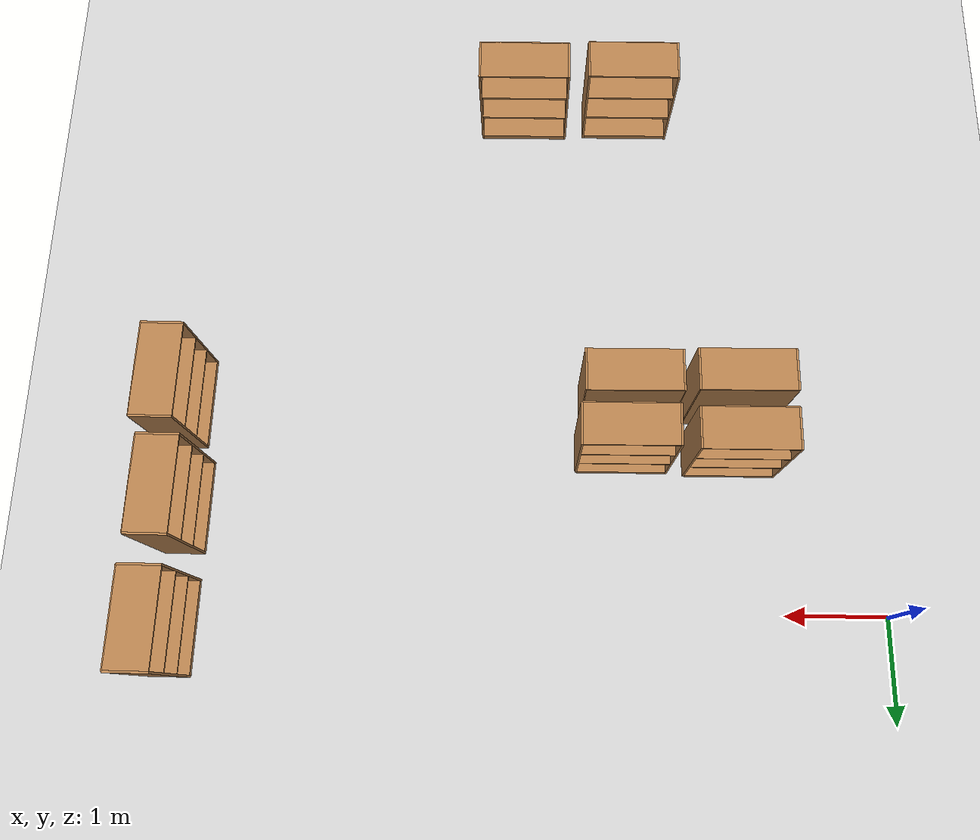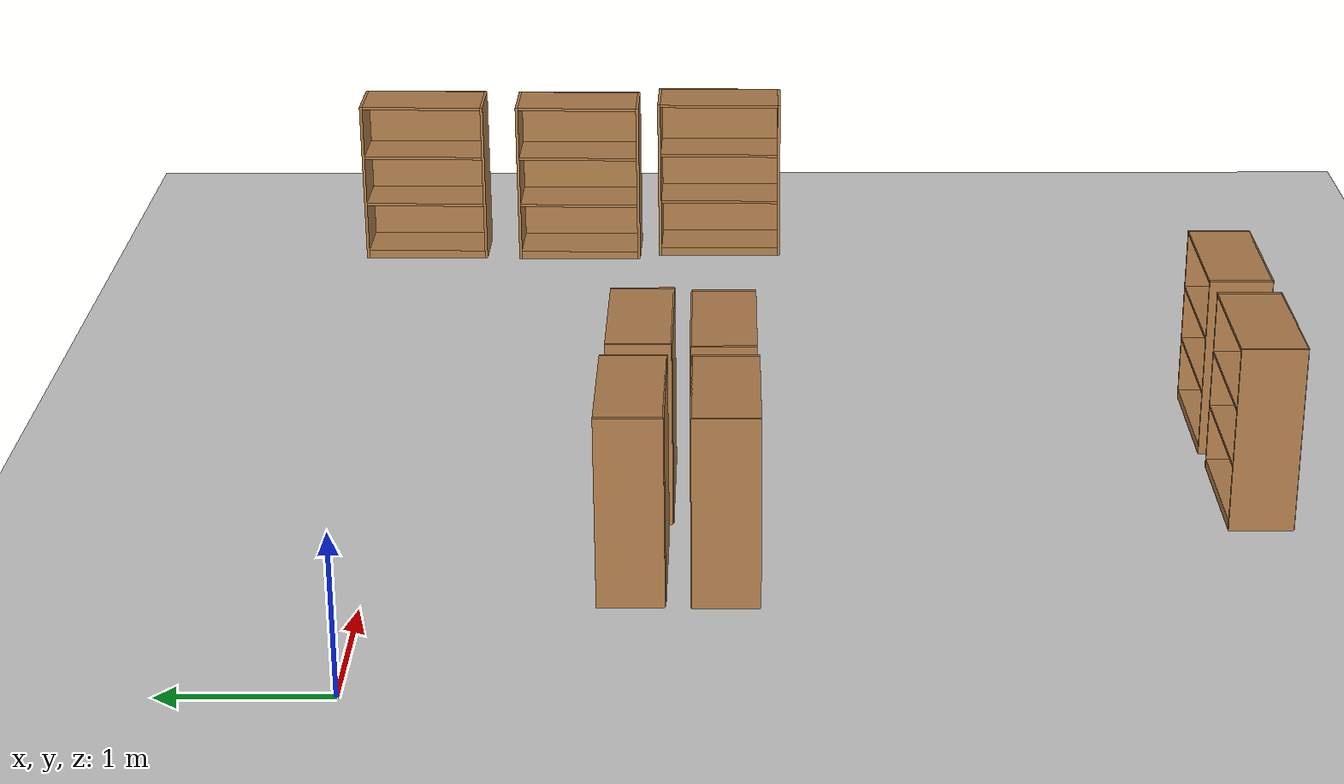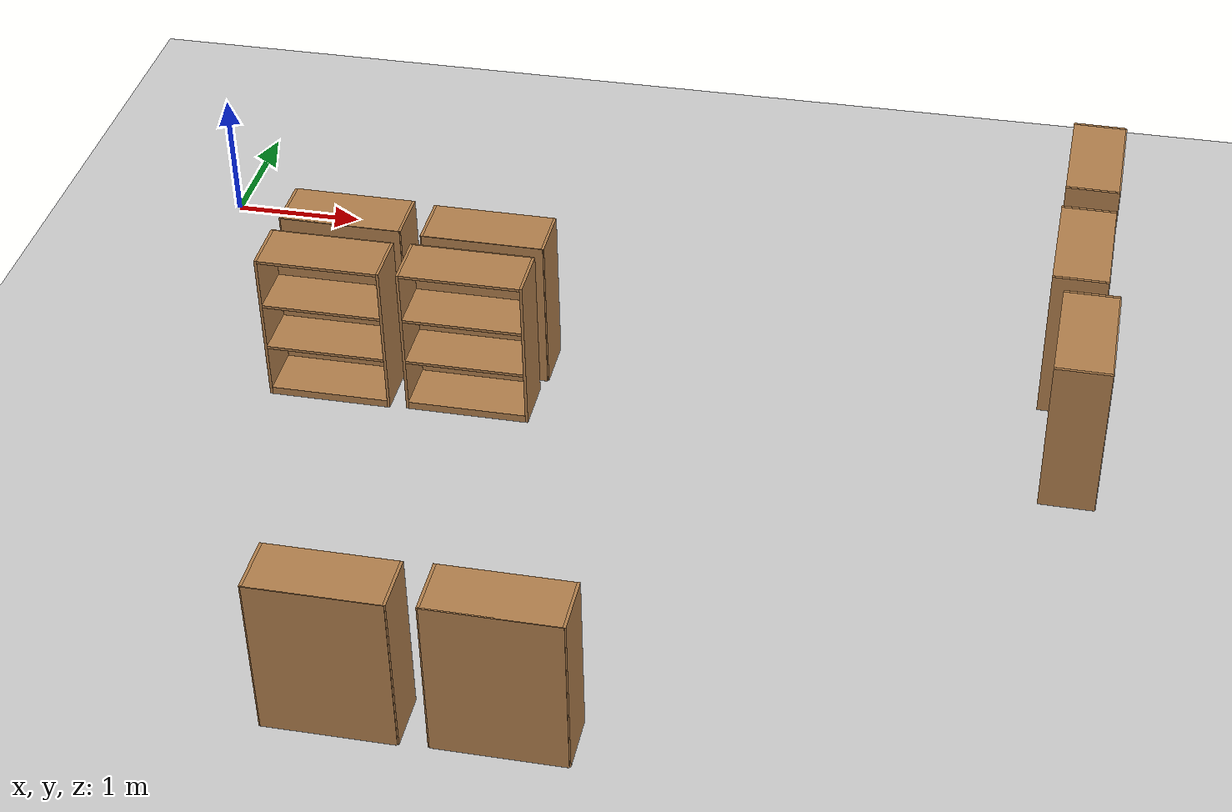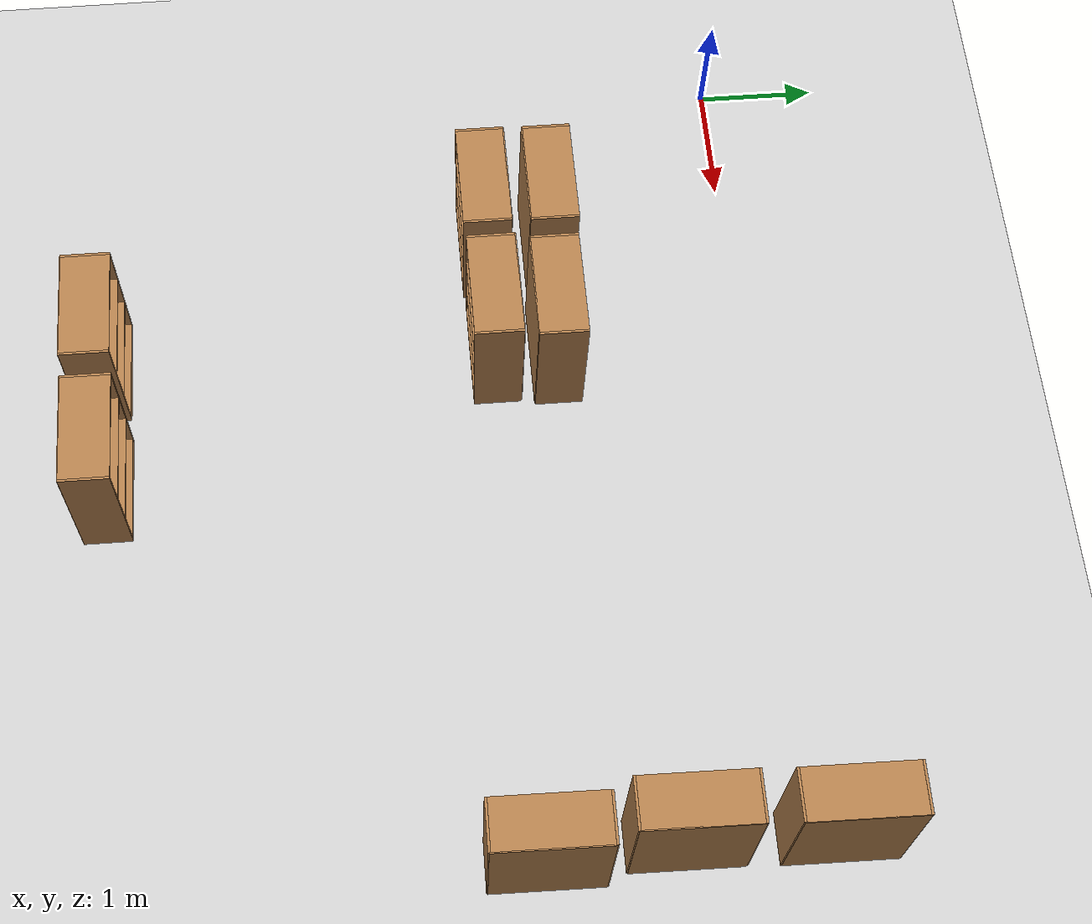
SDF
<sdf version="1.7">
 <world name="default">
  <model name="ground_plane">
   <static>1</static>
   <link name="link">
    <collision name="collision">
     <geometry><plane><normal>0 0 1</normal><size>100 100</size></plane></geometry>
     <surface><friction><ode><mu>100</mu><mu2>50</mu2></ode></friction></surface>
    </collision>
    <visual name="visual">
     <cast_shadows>0</cast_shadows>
     <geometry><plane><normal>0 0 1</normal><size>100 100</size></plane></geometry>
     <material>
      <script><uri>file://media/materials/scripts/gazebo.material</uri><name>Gazebo/Grey</name></script>
     </material>
    </visual>
   </link>
  </model>
  <model name="bookshelf">
   <static>1</static>
   <link name="link">
    <inertial><mass>1</mass></inertial>
    <collision name="back">
     <pose>0 0.005 0.6 0 -0 0</pose>
     <geometry><box><size>0.9 0.01 1.2</size></box></geometry>
    </collision>
    <visual name="visual1">
     <pose>0 0.005 0.6 0 -0 0</pose>
     <geometry><box><size>0.9 0.01 1.2</size></box></geometry>
     <material>
      <script><uri>file://media/materials/scripts/gazebo.material</uri><name>Gazebo/Wood</name></script>
     </material>
    </visual>
    <collision name="left_side">
     <pose>0.45 -0.195 0.6 0 -0 0</pose>
     <geometry><box><size>0.02 0.4 1.2</size></box></geometry>
    </collision>
    <visual name="visual2">
     <pose>0.45 -0.195 0.6 0 -0 0</pose>
     <geometry><box><size>0.02 0.4 1.2</size></box></geometry>
     <material>
      <script><uri>file://media/materials/scripts/gazebo.material</uri><name>Gazebo/Wood</name></script>
     </material>
    </visual>
    <collision name="right_side">
     <pose>-0.45 -0.195 0.6 0 -0 0</pose>
     <geometry><box><size>0.02 0.4 1.2</size></box></geometry>
    </collision>
    <visual name="visual3">
     <pose>-0.45 -0.195 0.6 0 -0 0</pose>
     <geometry><box><size>0.02 0.4 1.2</size></box></geometry>
     <material>
      <script><uri>file://media/materials/scripts/gazebo.material</uri><name>Gazebo/Wood</name></script>
     </material>
    </visual>
    <collision name="bottom">
     <pose>0 -0.195 0.03 0 -0 0</pose>
     <geometry><box><size>0.88 0.4 0.06</size></box></geometry>
    </collision>
    <visual name="visual4">
     <pose>0 -0.195 0.03 0 -0 0</pose>
     <geometry><box><size>0.88 0.4 0.06</size></box></geometry>
     <material>
      <script><uri>file://media/materials/scripts/gazebo.material</uri><name>Gazebo/Wood</name></script>
     </material>
    </visual>
    <collision name="top">
     <pose>0 -0.195 1.19 0 -0 0</pose>
     <geometry><box><size>0.88 0.4 0.02</size></box></geometry>
    </collision>
    <visual name="visual5">
     <pose>0 -0.195 1.19 0 -0 0</pose>
     <geometry><box><size>0.88 0.4 0.02</size></box></geometry>
     <material>
      <script><uri>file://media/materials/scripts/gazebo.material</uri><name>Gazebo/Wood</name></script>
     </material>
    </visual>
    <collision name="low_shelf">
     <pose>0 -0.195 0.43 0 -0 0</pose>
     <geometry><box><size>0.88 0.4 0.02</size></box></geometry>
    </collision>
    <visual name="visual6">
     <pose>0 -0.195 0.43 0 -0 0</pose>
     <geometry><box><size>0.88 0.4 0.02</size></box></geometry>
     <material>
      <script><uri>file://media/materials/scripts/gazebo.material</uri><name>Gazebo/Wood</name></script>
     </material>
    </visual>
    <collision name="high_shelf">
     <pose>0 -0.195 0.8 0 -0 0</pose>
     <geometry><box><size>0.88 0.4 0.02</size></box></geometry>
    </collision>
    <visual name="visual7">
     <pose>0 -0.195 0.8 0 -0 0</pose>
     <geometry><box><size>0.88 0.4 0.02</size></box></geometry>
     <material>
      <script><uri>file://media/materials/scripts/gazebo.material</uri><name>Gazebo/Wood</name></script>
     </material>
    </visual>
   </link>
   <pose>2.50859 -1.90908 0 0 -0 0</pose>
  </model>
  <model name="bookshelf_0">
   <static>1</static>
   <link name="link">
    <inertial><mass>1</mass></inertial>
    <collision name="back">
     <pose>0 0.005 0.6 0 -0 0</pose>
     <geometry><box><size>0.9 0.01 1.2</size></box></geometry>
    </collision>
    <visual name="visual1">
     <pose>0 0.005 0.6 0 -0 0</pose>
     <geometry><box><size>0.9 0.01 1.2</size></box></geometry>
     <material>
      <script><uri>file://media/materials/scripts/gazebo.material</uri><name>Gazebo/Wood</name></script>
     </material>
    </visual>
    <collision name="left_side">
     <pose>0.45 -0.195 0.6 0 -0 0</pose>
     <geometry><box><size>0.02 0.4 1.2</size></box></geometry>
    </collision>
    <visual name="visual2">
     <pose>0.45 -0.195 0.6 0 -0 0</pose>
     <geometry><box><size>0.02 0.4 1.2</size></box></geometry>
     <material>
      <script><uri>file://media/materials/scripts/gazebo.material</uri><name>Gazebo/Wood</name></script>
     </material>
    </visual>
    <collision name="right_side">
     <pose>-0.45 -0.195 0.6 0 -0 0</pose>
     <geometry><box><size>0.02 0.4 1.2</size></box></geometry>
    </collision>
    <visual name="visual3">
     <pose>-0.45 -0.195 0.6 0 -0 0</pose>
     <geometry><box><size>0.02 0.4 1.2</size></box></geometry>
     <material>
      <script><uri>file://media/materials/scripts/gazebo.material</uri><name>Gazebo/Wood</name></script>
     </material>
    </visual>
    <collision name="bottom">
     <pose>0 -0.195 0.03 0 -0 0</pose>
     <geometry><box><size>0.88 0.4 0.06</size></box></geometry>
    </collision>
    <visual name="visual4">
     <pose>0 -0.195 0.03 0 -0 0</pose>
     <geometry><box><size>0.88 0.4 0.06</size></box></geometry>
     <material>
      <script><uri>file://media/materials/scripts/gazebo.material</uri><name>Gazebo/Wood</name></script>
     </material>
    </visual>
    <collision name="top">
     <pose>0 -0.195 1.19 0 -0 0</pose>
     <geometry><box><size>0.88 0.4 0.02</size></box></geometry>
    </collision>
    <visual name="visual5">
     <pose>0 -0.195 1.19 0 -0 0</pose>
     <geometry><box><size>0.88 0.4 0.02</size></box></geometry>
     <material>
      <script><uri>file://media/materials/scripts/gazebo.material</uri><name>Gazebo/Wood</name></script>
     </material>
    </visual>
    <collision name="low_shelf">
     <pose>0 -0.195 0.43 0 -0 0</pose>
     <geometry><box><size>0.88 0.4 0.02</size></box></geometry>
    </collision>
    <visual name="visual6">
     <pose>0 -0.195 0.43 0 -0 0</pose>
     <geometry><box><size>0.88 0.4 0.02</size></box></geometry>
     <material>
      <script><uri>file://media/materials/scripts/gazebo.material</uri><name>Gazebo/Wood</name></script>
     </material>
    </visual>
    <collision name="high_shelf">
     <pose>0 -0.195 0.8 0 -0 0</pose>
     <geometry><box><size>0.88 0.4 0.02</size></box></geometry>
    </collision>
    <visual name="visual7">
     <pose>0 -0.195 0.8 0 -0 0</pose>
     <geometry><box><size>0.88 0.4 0.02</size></box></geometry>
     <material>
      <script><uri>file://media/materials/scripts/gazebo.material</uri><name>Gazebo/Wood</name></script>
     </material>
    </visual>
   </link>
   <pose>1.46715 -1.9224 0 0 -0 0</pose>
  </model>
  <model name="bookshelf_4">
   <static>1</static>
   <link name="link">
    <inertial><mass>1</mass></inertial>
    <collision name="back">
     <pose>0 0.005 0.6 0 -0 0</pose>
     <geometry><box><size>0.9 0.01 1.2</size></box></geometry>
    </collision>
    <visual name="visual1">
     <pose>0 0.005 0.6 0 -0 0</pose>
     <geometry><box><size>0.9 0.01 1.2</size></box></geometry>
     <material>
      <script><uri>file://media/materials/scripts/gazebo.material</uri><name>Gazebo/Wood</name></script>
     </material>
    </visual>
    <collision name="left_side">
     <pose>0.45 -0.195 0.6 0 -0 0</pose>
     <geometry><box><size>0.02 0.4 1.2</size></box></geometry>
    </collision>
    <visual name="visual2">
     <pose>0.45 -0.195 0.6 0 -0 0</pose>
     <geometry><box><size>0.02 0.4 1.2</size></box></geometry>
     <material>
      <script><uri>file://media/materials/scripts/gazebo.material</uri><name>Gazebo/Wood</name></script>
     </material>
    </visual>
    <collision name="right_side">
     <pose>-0.45 -0.195 0.6 0 -0 0</pose>
     <geometry><box><size>0.02 0.4 1.2</size></box></geometry>
    </collision>
    <visual name="visual3">
     <pose>-0.45 -0.195 0.6 0 -0 0</pose>
     <geometry><box><size>0.02 0.4 1.2</size></box></geometry>
     <material>
      <script><uri>file://media/materials/scripts/gazebo.material</uri><name>Gazebo/Wood</name></script>
     </material>
    </visual>
    <collision name="bottom">
     <pose>0 -0.195 0.03 0 -0 0</pose>
     <geometry><box><size>0.88 0.4 0.06</size></box></geometry>
    </collision>
    <visual name="visual4">
     <pose>0 -0.195 0.03 0 -0 0</pose>
     <geometry><box><size>0.88 0.4 0.06</size></box></geometry>
     <material>
      <script><uri>file://media/materials/scripts/gazebo.material</uri><name>Gazebo/Wood</name></script>
     </material>
    </visual>
    <collision name="top">
     <pose>0 -0.195 1.19 0 -0 0</pose>
     <geometry><box><size>0.88 0.4 0.02</size></box></geometry>
    </collision>
    <visual name="visual5">
     <pose>0 -0.195 1.19 0 -0 0</pose>
     <geometry><box><size>0.88 0.4 0.02</size></box></geometry>
     <material>
      <script><uri>file://media/materials/scripts/gazebo.material</uri><name>Gazebo/Wood</name></script>
     </material>
    </visual>
    <collision name="low_shelf">
     <pose>0 -0.195 0.43 0 -0 0</pose>
     <geometry><box><size>0.88 0.4 0.02</size></box></geometry>
    </collision>
    <visual name="visual6">
     <pose>0 -0.195 0.43 0 -0 0</pose>
     <geometry><box><size>0.88 0.4 0.02</size></box></geometry>
     <material>
      <script><uri>file://media/materials/scripts/gazebo.material</uri><name>Gazebo/Wood</name></script>
     </material>
    </visual>
    <collision name="high_shelf">
     <pose>0 -0.195 0.8 0 -0 0</pose>
     <geometry><box><size>0.88 0.4 0.02</size></box></geometry>
    </collision>
    <visual name="visual7">
     <pose>0 -0.195 0.8 0 -0 0</pose>
     <geometry><box><size>0.88 0.4 0.02</size></box></geometry>
     <material>
      <script><uri>file://media/materials/scripts/gazebo.material</uri><name>Gazebo/Wood</name></script>
     </material>
    </visual>
   </link>
   <pose>7.09428 -2.06897 0 0 -0 -1.58422</pose>
  </model>
  <model name="bookshelf_4_clone">
   <static>1</static>
   <link name="link">
    <inertial><mass>1</mass></inertial>
    <collision name="back">
     <pose>0 0.005 0.6 0 -0 0</pose>
     <geometry><box><size>0.9 0.01 1.2</size></box></geometry>
    </collision>
    <visual name="visual1">
     <pose>0 0.005 0.6 0 -0 0</pose>
     <geometry><box><size>0.9 0.01 1.2</size></box></geometry>
     <material>
      <script><uri>file://media/materials/scripts/gazebo.material</uri><name>Gazebo/Wood</name></script>
     </material>
    </visual>
    <collision name="left_side">
     <pose>0.45 -0.195 0.6 0 -0 0</pose>
     <geometry><box><size>0.02 0.4 1.2</size></box></geometry>
    </collision>
    <visual name="visual2">
     <pose>0.45 -0.195 0.6 0 -0 0</pose>
     <geometry><box><size>0.02 0.4 1.2</size></box></geometry>
     <material>
      <script><uri>file://media/materials/scripts/gazebo.material</uri><name>Gazebo/Wood</name></script>
     </material>
    </visual>
    <collision name="right_side">
     <pose>-0.45 -0.195 0.6 0 -0 0</pose>
     <geometry><box><size>0.02 0.4 1.2</size></box></geometry>
    </collision>
    <visual name="visual3">
     <pose>-0.45 -0.195 0.6 0 -0 0</pose>
     <geometry><box><size>0.02 0.4 1.2</size></box></geometry>
     <material>
      <script><uri>file://media/materials/scripts/gazebo.material</uri><name>Gazebo/Wood</name></script>
     </material>
    </visual>
    <collision name="bottom">
     <pose>0 -0.195 0.03 0 -0 0</pose>
     <geometry><box><size>0.88 0.4 0.06</size></box></geometry>
    </collision>
    <visual name="visual4">
     <pose>0 -0.195 0.03 0 -0 0</pose>
     <geometry><box><size>0.88 0.4 0.06</size></box></geometry>
     <material>
      <script><uri>file://media/materials/scripts/gazebo.material</uri><name>Gazebo/Wood</name></script>
     </material>
    </visual>
    <collision name="top">
     <pose>0 -0.195 1.19 0 -0 0</pose>
     <geometry><box><size>0.88 0.4 0.02</size></box></geometry>
    </collision>
    <visual name="visual5">
     <pose>0 -0.195 1.19 0 -0 0</pose>
     <geometry><box><size>0.88 0.4 0.02</size></box></geometry>
     <material>
      <script><uri>file://media/materials/scripts/gazebo.material</uri><name>Gazebo/Wood</name></script>
     </material>
    </visual>
    <collision name="low_shelf">
     <pose>0 -0.195 0.43 0 -0 0</pose>
     <geometry><box><size>0.88 0.4 0.02</size></box></geometry>
    </collision>
    <visual name="visual6">
     <pose>0 -0.195 0.43 0 -0 0</pose>
     <geometry><box><size>0.88 0.4 0.02</size></box></geometry>
     <material>
      <script><uri>file://media/materials/scripts/gazebo.material</uri><name>Gazebo/Wood</name></script>
     </material>
    </visual>
    <collision name="high_shelf">
     <pose>0 -0.195 0.8 0 -0 0</pose>
     <geometry><box><size>0.88 0.4 0.02</size></box></geometry>
    </collision>
    <visual name="visual7">
     <pose>0 -0.195 0.8 0 -0 0</pose>
     <geometry><box><size>0.88 0.4 0.02</size></box></geometry>
     <material>
      <script><uri>file://media/materials/scripts/gazebo.material</uri><name>Gazebo/Wood</name></script>
     </material>
    </visual>
   </link>
   <pose>2.54924 -1.78639 0 0 -0 3.13902</pose>
  </model>
  <model name="bookshelf_4_clone_0">
   <static>1</static>
   <link name="link">
    <inertial><mass>1</mass></inertial>
    <collision name="back">
     <pose>0 0.005 0.6 0 -0 0</pose>
     <geometry><box><size>0.9 0.01 1.2</size></box></geometry>
    </collision>
    <visual name="visual1">
     <pose>0 0.005 0.6 0 -0 0</pose>
     <geometry><box><size>0.9 0.01 1.2</size></box></geometry>
     <material>
      <script><uri>file://media/materials/scripts/gazebo.material</uri><name>Gazebo/Wood</name></script>
     </material>
    </visual>
    <collision name="left_side">
     <pose>0.45 -0.195 0.6 0 -0 0</pose>
     <geometry><box><size>0.02 0.4 1.2</size></box></geometry>
    </collision>
    <visual name="visual2">
     <pose>0.45 -0.195 0.6 0 -0 0</pose>
     <geometry><box><size>0.02 0.4 1.2</size></box></geometry>
     <material>
      <script><uri>file://media/materials/scripts/gazebo.material</uri><name>Gazebo/Wood</name></script>
     </material>
    </visual>
    <collision name="right_side">
     <pose>-0.45 -0.195 0.6 0 -0 0</pose>
     <geometry><box><size>0.02 0.4 1.2</size></box></geometry>
    </collision>
    <visual name="visual3">
     <pose>-0.45 -0.195 0.6 0 -0 0</pose>
     <geometry><box><size>0.02 0.4 1.2</size></box></geometry>
     <material>
      <script><uri>file://media/materials/scripts/gazebo.material</uri><name>Gazebo/Wood</name></script>
     </material>
    </visual>
    <collision name="bottom">
     <pose>0 -0.195 0.03 0 -0 0</pose>
     <geometry><box><size>0.88 0.4 0.06</size></box></geometry>
    </collision>
    <visual name="visual4">
     <pose>0 -0.195 0.03 0 -0 0</pose>
     <geometry><box><size>0.88 0.4 0.06</size></box></geometry>
     <material>
      <script><uri>file://media/materials/scripts/gazebo.material</uri><name>Gazebo/Wood</name></script>
     </material>
    </visual>
    <collision name="top">
     <pose>0 -0.195 1.19 0 -0 0</pose>
     <geometry><box><size>0.88 0.4 0.02</size></box></geometry>
    </collision>
    <visual name="visual5">
     <pose>0 -0.195 1.19 0 -0 0</pose>
     <geometry><box><size>0.88 0.4 0.02</size></box></geometry>
     <material>
      <script><uri>file://media/materials/scripts/gazebo.material</uri><name>Gazebo/Wood</name></script>
     </material>
    </visual>
    <collision name="low_shelf">
     <pose>0 -0.195 0.43 0 -0 0</pose>
     <geometry><box><size>0.88 0.4 0.02</size></box></geometry>
    </collision>
    <visual name="visual6">
     <pose>0 -0.195 0.43 0 -0 0</pose>
     <geometry><box><size>0.88 0.4 0.02</size></box></geometry>
     <material>
      <script><uri>file://media/materials/scripts/gazebo.material</uri><name>Gazebo/Wood</name></script>
     </material>
    </visual>
    <collision name="high_shelf">
     <pose>0 -0.195 0.8 0 -0 0</pose>
     <geometry><box><size>0.88 0.4 0.02</size></box></geometry>
    </collision>
    <visual name="visual7">
     <pose>0 -0.195 0.8 0 -0 0</pose>
     <geometry><box><size>0.88 0.4 0.02</size></box></geometry>
     <material>
      <script><uri>file://media/materials/scripts/gazebo.material</uri><name>Gazebo/Wood</name></script>
     </material>
    </visual>
   </link>
   <pose>1.47705 -1.75897 0 0 -0 3.13902</pose>
  </model>
  <model name="bookshelf_4_clone_1">
   <static>1</static>
   <link name="link">
    <inertial><mass>1</mass></inertial>
    <collision name="back">
     <pose>0 0.005 0.6 0 -0 0</pose>
     <geometry><box><size>0.9 0.01 1.2</size></box></geometry>
    </collision>
    <visual name="visual1">
     <pose>0 0.005 0.6 0 -0 0</pose>
     <geometry><box><size>0.9 0.01 1.2</size></box></geometry>
     <material>
      <script><uri>file://media/materials/scripts/gazebo.material</uri><name>Gazebo/Wood</name></script>
     </material>
    </visual>
    <collision name="left_side">
     <pose>0.45 -0.195 0.6 0 -0 0</pose>
     <geometry><box><size>0.02 0.4 1.2</size></box></geometry>
    </collision>
    <visual name="visual2">
     <pose>0.45 -0.195 0.6 0 -0 0</pose>
     <geometry><box><size>0.02 0.4 1.2</size></box></geometry>
     <material>
      <script><uri>file://media/materials/scripts/gazebo.material</uri><name>Gazebo/Wood</name></script>
     </material>
    </visual>
    <collision name="right_side">
     <pose>-0.45 -0.195 0.6 0 -0 0</pose>
     <geometry><box><size>0.02 0.4 1.2</size></box></geometry>
    </collision>
    <visual name="visual3">
     <pose>-0.45 -0.195 0.6 0 -0 0</pose>
     <geometry><box><size>0.02 0.4 1.2</size></box></geometry>
     <material>
      <script><uri>file://media/materials/scripts/gazebo.material</uri><name>Gazebo/Wood</name></script>
     </material>
    </visual>
    <collision name="bottom">
     <pose>0 -0.195 0.03 0 -0 0</pose>
     <geometry><box><size>0.88 0.4 0.06</size></box></geometry>
    </collision>
    <visual name="visual4">
     <pose>0 -0.195 0.03 0 -0 0</pose>
     <geometry><box><size>0.88 0.4 0.06</size></box></geometry>
     <material>
      <script><uri>file://media/materials/scripts/gazebo.material</uri><name>Gazebo/Wood</name></script>
     </material>
    </visual>
    <collision name="top">
     <pose>0 -0.195 1.19 0 -0 0</pose>
     <geometry><box><size>0.88 0.4 0.02</size></box></geometry>
    </collision>
    <visual name="visual5">
     <pose>0 -0.195 1.19 0 -0 0</pose>
     <geometry><box><size>0.88 0.4 0.02</size></box></geometry>
     <material>
      <script><uri>file://media/materials/scripts/gazebo.material</uri><name>Gazebo/Wood</name></script>
     </material>
    </visual>
    <collision name="low_shelf">
     <pose>0 -0.195 0.43 0 -0 0</pose>
     <geometry><box><size>0.88 0.4 0.02</size></box></geometry>
    </collision>
    <visual name="visual6">
     <pose>0 -0.195 0.43 0 -0 0</pose>
     <geometry><box><size>0.88 0.4 0.02</size></box></geometry>
     <material>
      <script><uri>file://media/materials/scripts/gazebo.material</uri><name>Gazebo/Wood</name></script>
     </material>
    </visual>
    <collision name="high_shelf">
     <pose>0 -0.195 0.8 0 -0 0</pose>
     <geometry><box><size>0.88 0.4 0.02</size></box></geometry>
    </collision>
    <visual name="visual7">
     <pose>0 -0.195 0.8 0 -0 0</pose>
     <geometry><box><size>0.88 0.4 0.02</size></box></geometry>
     <material>
      <script><uri>file://media/materials/scripts/gazebo.material</uri><name>Gazebo/Wood</name></script>
     </material>
    </visual>
   </link>
   <pose>3.55253 -5.5625 0 0 -0 3.13902</pose>
  </model>
  <model name="bookshelf_4_clone_2">
   <static>1</static>
   <link name="link">
    <inertial><mass>1</mass></inertial>
    <collision name="back">
     <pose>0 0.005 0.6 0 -0 0</pose>
     <geometry><box><size>0.9 0.01 1.2</size></box></geometry>
    </collision>
    <visual name="visual1">
     <pose>0 0.005 0.6 0 -0 0</pose>
     <geometry><box><size>0.9 0.01 1.2</size></box></geometry>
     <material>
      <script><uri>file://media/materials/scripts/gazebo.material</uri><name>Gazebo/Wood</name></script>
     </material>
    </visual>
    <collision name="left_side">
     <pose>0.45 -0.195 0.6 0 -0 0</pose>
     <geometry><box><size>0.02 0.4 1.2</size></box></geometry>
    </collision>
    <visual name="visual2">
     <pose>0.45 -0.195 0.6 0 -0 0</pose>
     <geometry><box><size>0.02 0.4 1.2</size></box></geometry>
     <material>
      <script><uri>file://media/materials/scripts/gazebo.material</uri><name>Gazebo/Wood</name></script>
     </material>
    </visual>
    <collision name="right_side">
     <pose>-0.45 -0.195 0.6 0 -0 0</pose>
     <geometry><box><size>0.02 0.4 1.2</size></box></geometry>
    </collision>
    <visual name="visual3">
     <pose>-0.45 -0.195 0.6 0 -0 0</pose>
     <geometry><box><size>0.02 0.4 1.2</size></box></geometry>
     <material>
      <script><uri>file://media/materials/scripts/gazebo.material</uri><name>Gazebo/Wood</name></script>
     </material>
    </visual>
    <collision name="bottom">
     <pose>0 -0.195 0.03 0 -0 0</pose>
     <geometry><box><size>0.88 0.4 0.06</size></box></geometry>
    </collision>
    <visual name="visual4">
     <pose>0 -0.195 0.03 0 -0 0</pose>
     <geometry><box><size>0.88 0.4 0.06</size></box></geometry>
     <material>
      <script><uri>file://media/materials/scripts/gazebo.material</uri><name>Gazebo/Wood</name></script>
     </material>
    </visual>
    <collision name="top">
     <pose>0 -0.195 1.19 0 -0 0</pose>
     <geometry><box><size>0.88 0.4 0.02</size></box></geometry>
    </collision>
    <visual name="visual5">
     <pose>0 -0.195 1.19 0 -0 0</pose>
     <geometry><box><size>0.88 0.4 0.02</size></box></geometry>
     <material>
      <script><uri>file://media/materials/scripts/gazebo.material</uri><name>Gazebo/Wood</name></script>
     </material>
    </visual>
    <collision name="low_shelf">
     <pose>0 -0.195 0.43 0 -0 0</pose>
     <geometry><box><size>0.88 0.4 0.02</size></box></geometry>
    </collision>
    <visual name="visual6">
     <pose>0 -0.195 0.43 0 -0 0</pose>
     <geometry><box><size>0.88 0.4 0.02</size></box></geometry>
     <material>
      <script><uri>file://media/materials/scripts/gazebo.material</uri><name>Gazebo/Wood</name></script>
     </material>
    </visual>
    <collision name="high_shelf">
     <pose>0 -0.195 0.8 0 -0 0</pose>
     <geometry><box><size>0.88 0.4 0.02</size></box></geometry>
    </collision>
    <visual name="visual7">
     <pose>0 -0.195 0.8 0 -0 0</pose>
     <geometry><box><size>0.88 0.4 0.02</size></box></geometry>
     <material>
      <script><uri>file://media/materials/scripts/gazebo.material</uri><name>Gazebo/Wood</name></script>
     </material>
    </visual>
   </link>
   <pose>2.44957 -5.57602 0 0 -0 3.13902</pose>
  </model>
  <model name="bookshelf_4_clone_9">
   <static>1</static>
   <link name="link">
    <inertial><mass>1</mass></inertial>
    <collision name="back">
     <pose>0 0.005 0.6 0 -0 0</pose>
     <geometry><box><size>0.9 0.01 1.2</size></box></geometry>
    </collision>
    <visual name="visual1">
     <pose>0 0.005 0.6 0 -0 0</pose>
     <geometry><box><size>0.9 0.01 1.2</size></box></geometry>
     <material>
      <script><uri>file://media/materials/scripts/gazebo.material</uri><name>Gazebo/Wood</name></script>
     </material>
    </visual>
    <collision name="left_side">
     <pose>0.45 -0.195 0.6 0 -0 0</pose>
     <geometry><box><size>0.02 0.4 1.2</size></box></geometry>
    </collision>
    <visual name="visual2">
     <pose>0.45 -0.195 0.6 0 -0 0</pose>
     <geometry><box><size>0.02 0.4 1.2</size></box></geometry>
     <material>
      <script><uri>file://media/materials/scripts/gazebo.material</uri><name>Gazebo/Wood</name></script>
     </material>
    </visual>
    <collision name="right_side">
     <pose>-0.45 -0.195 0.6 0 -0 0</pose>
     <geometry><box><size>0.02 0.4 1.2</size></box></geometry>
    </collision>
    <visual name="visual3">
     <pose>-0.45 -0.195 0.6 0 -0 0</pose>
     <geometry><box><size>0.02 0.4 1.2</size></box></geometry>
     <material>
      <script><uri>file://media/materials/scripts/gazebo.material</uri><name>Gazebo/Wood</name></script>
     </material>
    </visual>
    <collision name="bottom">
     <pose>0 -0.195 0.03 0 -0 0</pose>
     <geometry><box><size>0.88 0.4 0.06</size></box></geometry>
    </collision>
    <visual name="visual4">
     <pose>0 -0.195 0.03 0 -0 0</pose>
     <geometry><box><size>0.88 0.4 0.06</size></box></geometry>
     <material>
      <script><uri>file://media/materials/scripts/gazebo.material</uri><name>Gazebo/Wood</name></script>
     </material>
    </visual>
    <collision name="top">
     <pose>0 -0.195 1.19 0 -0 0</pose>
     <geometry><box><size>0.88 0.4 0.02</size></box></geometry>
    </collision>
    <visual name="visual5">
     <pose>0 -0.195 1.19 0 -0 0</pose>
     <geometry><box><size>0.88 0.4 0.02</size></box></geometry>
     <material>
      <script><uri>file://media/materials/scripts/gazebo.material</uri><name>Gazebo/Wood</name></script>
     </material>
    </visual>
    <collision name="low_shelf">
     <pose>0 -0.195 0.43 0 -0 0</pose>
     <geometry><box><size>0.88 0.4 0.02</size></box></geometry>
    </collision>
    <visual name="visual6">
     <pose>0 -0.195 0.43 0 -0 0</pose>
     <geometry><box><size>0.88 0.4 0.02</size></box></geometry>
     <material>
      <script><uri>file://media/materials/scripts/gazebo.material</uri><name>Gazebo/Wood</name></script>
     </material>
    </visual>
    <collision name="high_shelf">
     <pose>0 -0.195 0.8 0 -0 0</pose>
     <geometry><box><size>0.88 0.4 0.02</size></box></geometry>
    </collision>
    <visual name="visual7">
     <pose>0 -0.195 0.8 0 -0 0</pose>
     <geometry><box><size>0.88 0.4 0.02</size></box></geometry>
     <material>
      <script><uri>file://media/materials/scripts/gazebo.material</uri><name>Gazebo/Wood</name></script>
     </material>
    </visual>
   </link>
   <pose>7.01897 -1.00718 0 0 0 -1.58422</pose>
  </model>
  <model name="bookshelf_4_clone_10">
   <static>1</static>
   <link name="link">
    <inertial><mass>1</mass></inertial>
    <collision name="back">
     <pose>0 0.005 0.6 0 -0 0</pose>
     <geometry><box><size>0.9 0.01 1.2</size></box></geometry>
    </collision>
    <visual name="visual1">
     <pose>0 0.005 0.6 0 -0 0</pose>
     <geometry><box><size>0.9 0.01 1.2</size></box></geometry>
     <material>
      <script><uri>file://media/materials/scripts/gazebo.material</uri><name>Gazebo/Wood</name></script>
     </material>
    </visual>
    <collision name="left_side">
     <pose>0.45 -0.195 0.6 0 -0 0</pose>
     <geometry><box><size>0.02 0.4 1.2</size></box></geometry>
    </collision>
    <visual name="visual2">
     <pose>0.45 -0.195 0.6 0 -0 0</pose>
     <geometry><box><size>0.02 0.4 1.2</size></box></geometry>
     <material>
      <script><uri>file://media/materials/scripts/gazebo.material</uri><name>Gazebo/Wood</name></script>
     </material>
    </visual>
    <collision name="right_side">
     <pose>-0.45 -0.195 0.6 0 -0 0</pose>
     <geometry><box><size>0.02 0.4 1.2</size></box></geometry>
    </collision>
    <visual name="visual3">
     <pose>-0.45 -0.195 0.6 0 -0 0</pose>
     <geometry><box><size>0.02 0.4 1.2</size></box></geometry>
     <material>
      <script><uri>file://media/materials/scripts/gazebo.material</uri><name>Gazebo/Wood</name></script>
     </material>
    </visual>
    <collision name="bottom">
     <pose>0 -0.195 0.03 0 -0 0</pose>
     <geometry><box><size>0.88 0.4 0.06</size></box></geometry>
    </collision>
    <visual name="visual4">
     <pose>0 -0.195 0.03 0 -0 0</pose>
     <geometry><box><size>0.88 0.4 0.06</size></box></geometry>
     <material>
      <script><uri>file://media/materials/scripts/gazebo.material</uri><name>Gazebo/Wood</name></script>
     </material>
    </visual>
    <collision name="top">
     <pose>0 -0.195 1.19 0 -0 0</pose>
     <geometry><box><size>0.88 0.4 0.02</size></box></geometry>
    </collision>
    <visual name="visual5">
     <pose>0 -0.195 1.19 0 -0 0</pose>
     <geometry><box><size>0.88 0.4 0.02</size></box></geometry>
     <material>
      <script><uri>file://media/materials/scripts/gazebo.material</uri><name>Gazebo/Wood</name></script>
     </material>
    </visual>
    <collision name="low_shelf">
     <pose>0 -0.195 0.43 0 -0 0</pose>
     <geometry><box><size>0.88 0.4 0.02</size></box></geometry>
    </collision>
    <visual name="visual6">
     <pose>0 -0.195 0.43 0 -0 0</pose>
     <geometry><box><size>0.88 0.4 0.02</size></box></geometry>
     <material>
      <script><uri>file://media/materials/scripts/gazebo.material</uri><name>Gazebo/Wood</name></script>
     </material>
    </visual>
    <collision name="high_shelf">
     <pose>0 -0.195 0.8 0 -0 0</pose>
     <geometry><box><size>0.88 0.4 0.02</size></box></geometry>
    </collision>
    <visual name="visual7">
     <pose>0 -0.195 0.8 0 -0 0</pose>
     <geometry><box><size>0.88 0.4 0.02</size></box></geometry>
     <material>
      <script><uri>file://media/materials/scripts/gazebo.material</uri><name>Gazebo/Wood</name></script>
     </material>
    </visual>
   </link>
   <pose>7.04554 0.156881 0 0 0 -1.58422</pose>
  </model>
 </world>
</sdf>
